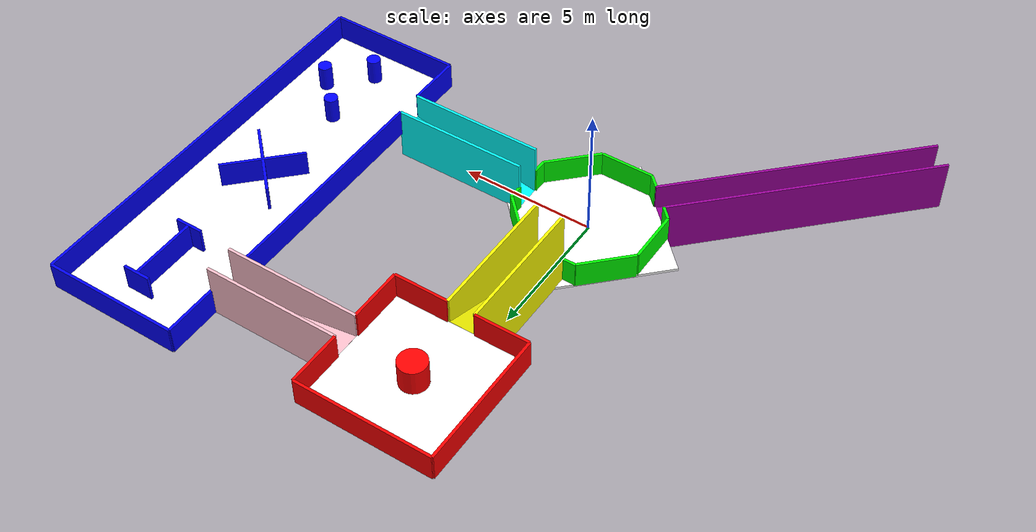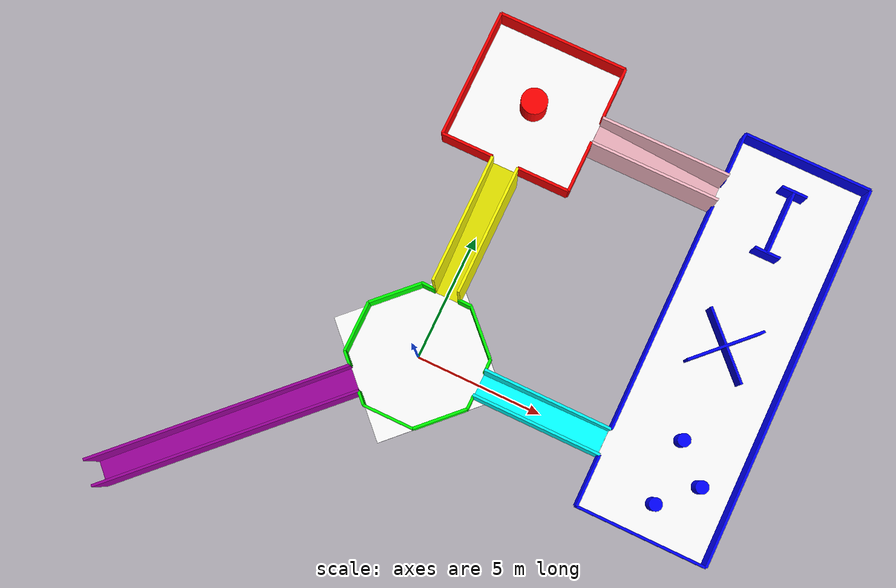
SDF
<sdf version="1.5">
 <world name="7hd">
  <include><uri>model://sun</uri></include>
  <model name="room_green">
   <static>true</static>
   <link name="floor">
    <collision name="coll"><geometry><box><size>5 5 0.1</size></box></geometry></collision>
    <visual name="vis">
     <geometry><box><size>5 5 0.1</size></box></geometry>
     <material><ambient>1 1 1 1</ambient><diffuse>1 1 1 1</diffuse></material>
    </visual>
    <pose>0 0 0 0 0 0.7854</pose>
   </link>
   <link name="wall_back">
    <collision name="coll"><geometry><box><size>0.1 2 1</size></box></geometry></collision>
    <visual name="vis">
     <geometry><box><size>0.1 2 1</size></box></geometry>
     <material><ambient>0 1 0 1</ambient><diffuse>0 1 0 1</diffuse></material>
    </visual>
    <pose>-2.5 0 0.5 0 0 0</pose>
   </link>
   <link name="wall_left_left">
    <collision name="coll"><geometry><box><size>0.55 0.1 1</size></box></geometry></collision>
    <visual name="vis">
     <geometry><box><size>0.55 0.1 1</size></box></geometry>
     <material><ambient>0 1 0 1</ambient><diffuse>0 1 0 1</diffuse></material>
    </visual>
    <pose>-0.75 2.5 0.5 0 0 0</pose>
   </link>
   <link name="wall_left_right">
    <collision name="coll"><geometry><box><size>0.55 0.1 1</size></box></geometry></collision>
    <visual name="vis">
     <geometry><box><size>0.55 0.1 1</size></box></geometry>
     <material><ambient>0 1 0 1</ambient><diffuse>0 1 0 1</diffuse></material>
    </visual>
    <pose>0.75 2.5 0.5 0 0 0</pose>
   </link>
   <link name="wall_right">
    <collision name="coll"><geometry><box><size>2 0.1 1</size></box></geometry></collision>
    <visual name="vis">
     <geometry><box><size>2 0.1 1</size></box></geometry>
     <material><ambient>0 1 0 1</ambient><diffuse>0 1 0 1</diffuse></material>
    </visual>
    <pose>0 -2.5 0.5 0 0 0</pose>
   </link>
   <link name="wall_front_leftSeg">
    <collision name="coll"><geometry><box><size>0.1 0.55 1</size></box></geometry></collision>
    <visual name="vis">
     <geometry><box><size>0.1 0.55 1</size></box></geometry>
     <material><ambient>0 1 0 1</ambient><diffuse>0 1 0 1</diffuse></material>
    </visual>
    <pose>2.5 -0.75 0.5 0 0 0</pose>
   </link>
   <link name="wall_front_rightSeg">
    <collision name="coll"><geometry><box><size>0.1 0.55 1</size></box></geometry></collision>
    <visual name="vis">
     <geometry><box><size>0.1 0.55 1</size></box></geometry>
     <material><ambient>0 1 0 1</ambient><diffuse>0 1 0 1</diffuse></material>
    </visual>
    <pose>2.5 0.75 0.5 0 0 0</pose>
   </link>
   <link name="wall_ne">
    <collision name="coll"><geometry><box><size>2.1 0.1 1</size></box></geometry></collision>
    <visual name="vis">
     <geometry><box><size>2.1 0.1 1</size></box></geometry>
     <material><ambient>0 1 0 1</ambient><diffuse>0 1 0 1</diffuse></material>
    </visual>
    <pose>1.75 -1.75 0.5 0 0 0.7854</pose>
   </link>
   <link name="wall_sw">
    <collision name="coll"><geometry><box><size>2.1 0.1 1</size></box></geometry></collision>
    <visual name="vis">
     <geometry><box><size>2.1 0.1 1</size></box></geometry>
     <material><ambient>0 1 0 1</ambient><diffuse>0 1 0 1</diffuse></material>
    </visual>
    <pose>-1.75 1.75 0.5 0 0 0.7854</pose>
   </link>
   <link name="wall_nw">
    <collision name="coll"><geometry><box><size>2.1 0.1 1</size></box></geometry></collision>
    <visual name="vis">
     <geometry><box><size>2.1 0.1 1</size></box></geometry>
     <material><ambient>0 1 0 1</ambient><diffuse>0 1 0 1</diffuse></material>
    </visual>
    <pose>1.75 1.75 0.5 0 0 2.356</pose>
   </link>
   <link name="wall_se_left">
    <collision name="coll"><geometry><box><size>0.55 0.1 1</size></box></geometry></collision>
    <visual name="vis">
     <geometry><box><size>0.55 0.1 1</size></box></geometry>
     <material><ambient>0 1 0 1</ambient><diffuse>0 1 0 1</diffuse></material>
    </visual>
    <pose>-1.2 -2.3 0.5 0 0 2.356</pose>
   </link>
   <link name="wall_se_right">
    <collision name="coll"><geometry><box><size>0.55 0.1 1</size></box></geometry></collision>
    <visual name="vis">
     <geometry><box><size>0.55 0.1 1</size></box></geometry>
     <material><ambient>0 1 0 1</ambient><diffuse>0 1 0 1</diffuse></material>
    </visual>
    <pose>-2.3 -1.2 0.5 0 0 2.356</pose>
   </link>
  </model>
  <model name="room_red">
   <static>true</static>
   <link name="floor">
    <collision name="coll"><geometry><box><size>5 5 0.1</size></box></geometry></collision>
    <visual name="vis">
     <geometry><box><size>5 5 0.1</size></box></geometry>
     <material><ambient>1 1 1 1</ambient><diffuse>1 1 1 1</diffuse></material>
    </visual>
   </link>
   <link name="wall_back">
    <collision name="coll"><geometry><box><size>0.1 5 1</size></box></geometry></collision>
    <visual name="vis">
     <geometry><box><size>0.1 5 1</size></box></geometry>
     <material><ambient>1 0 0 1</ambient><diffuse>1 0 0 1</diffuse></material>
    </visual>
    <pose>-2.5 0 0.5 0 0 0</pose>
   </link>
   <link name="wall_left">
    <collision name="coll"><geometry><box><size>5 0.1 1</size></box></geometry></collision>
    <visual name="vis">
     <geometry><box><size>5 0.1 1</size></box></geometry>
     <material><ambient>1 0 0 1</ambient><diffuse>1 0 0 1</diffuse></material>
    </visual>
    <pose>0 2.5 0.5 0 0 0</pose>
   </link>
   <link name="wall_right_left">
    <collision name="coll"><geometry><box><size>2 0.1 1</size></box></geometry></collision>
    <visual name="vis">
     <geometry><box><size>2 0.1 1</size></box></geometry>
     <material><ambient>1 0 0 1</ambient><diffuse>1 0 0 1</diffuse></material>
    </visual>
    <pose>-1.5 -2.5 0.5 0 0 0</pose>
   </link>
   <link name="wall_right_right">
    <collision name="coll"><geometry><box><size>2 0.1 1</size></box></geometry></collision>
    <visual name="vis">
     <geometry><box><size>2 0.1 1</size></box></geometry>
     <material><ambient>1 0 0 1</ambient><diffuse>1 0 0 1</diffuse></material>
    </visual>
    <pose>1.5 -2.5 0.5 0 0 0</pose>
   </link>
   <link name="wall_front_leftSeg">
    <collision name="coll"><geometry><box><size>0.1 2 1</size></box></geometry></collision>
    <visual name="vis">
     <geometry><box><size>0.1 2 1</size></box></geometry>
     <material><ambient>1 0 0 1</ambient><diffuse>1 0 0 1</diffuse></material>
    </visual>
    <pose>2.5 -1.5 0.5 0 0 0</pose>
   </link>
   <link name="wall_front_rightSeg">
    <collision name="coll"><geometry><box><size>0.1 2 1</size></box></geometry></collision>
    <visual name="vis">
     <geometry><box><size>0.1 2 1</size></box></geometry>
     <material><ambient>1 0 0 1</ambient><diffuse>1 0 0 1</diffuse></material>
    </visual>
    <pose>2.5 1.5 0.5 0 0 0</pose>
   </link>
   <link name="cylinder">
    <collision name="collision">
     <geometry><cylinder><radius>0.5</radius><length>1</length></cylinder></geometry>
    </collision>
    <visual name="visual">
     <geometry><cylinder><radius>0.5</radius><length>1</length></cylinder></geometry>
     <material><ambient>1 0 0 1</ambient><diffuse>1 0 0 1</diffuse></material>
    </visual>
    <pose>0 0 0.5 0 0 0</pose>
   </link>
   <pose>0 10 2 0 0 0</pose>
  </model>
  <model name="room_blue">
   <static>true</static>
   <link name="floor">
    <collision name="coll"><geometry><box><size>5 15 0.1</size></box></geometry></collision>
    <visual name="vis">
     <geometry><box><size>5 15 0.1</size></box></geometry>
     <material><ambient>1 1 1 1</ambient><diffuse>1 1 1 1</diffuse></material>
    </visual>
   </link>
   <link name="wall_back">
    <collision name="coll"><geometry><box><size>0.1 15 1</size></box></geometry></collision>
    <visual name="vis">
     <geometry><box><size>0.1 15 1</size></box></geometry>
     <material><ambient>0 0 1 1</ambient><diffuse>0 0 1 1</diffuse></material>
    </visual>
    <pose>2.5 0 0.5 0 0 0</pose>
   </link>
   <link name="wall_left">
    <collision name="coll"><geometry><box><size>5 0.1 1</size></box></geometry></collision>
    <visual name="vis">
     <geometry><box><size>5 0.1 1</size></box></geometry>
     <material><ambient>0 0 1 1</ambient><diffuse>0 0 1 1</diffuse></material>
    </visual>
    <pose>0 -7.5 0.5 0 0 0</pose>
   </link>
   <link name="wall_right">
    <collision name="coll"><geometry><box><size>5 0.1 1</size></box></geometry></collision>
    <visual name="vis">
     <geometry><box><size>5 0.1 1</size></box></geometry>
     <material><ambient>0 0 1 1</ambient><diffuse>0 0 1 1</diffuse></material>
    </visual>
    <pose>0 7.5 0.5 0 0 0</pose>
   </link>
   <link name="wall_front_leftSeg">
    <collision name="coll"><geometry><box><size>0.1 2 1</size></box></geometry></collision>
    <visual name="vis">
     <geometry><box><size>0.1 2 1</size></box></geometry>
     <material><ambient>0 0 1 1</ambient><diffuse>0 0 1 1</diffuse></material>
    </visual>
    <pose>-2.5 -6.5 0.5 0 0 0</pose>
   </link>
   <link name="wall_front_rightSeg">
    <collision name="coll"><geometry><box><size>0.1 2 1</size></box></geometry></collision>
    <visual name="vis">
     <geometry><box><size>0.1 2 1</size></box></geometry>
     <material><ambient>0 0 1 1</ambient><diffuse>0 0 1 1</diffuse></material>
    </visual>
    <pose>-2.5 6.5 0.5 0 0 0</pose>
   </link>
   <link name="wall_front_middleSeg">
    <collision name="coll"><geometry><box><size>0.1 9 1</size></box></geometry></collision>
    <visual name="vis">
     <geometry><box><size>0.1 9 1</size></box></geometry>
     <material><ambient>0 0 1 1</ambient><diffuse>0 0 1 1</diffuse></material>
    </visual>
    <pose>-2.5 0 0.5 0 0 0</pose>
   </link>
   <link name="cylinder1">
    <collision name="collision">
     <geometry><cylinder><radius>0.25</radius><length>1</length></cylinder></geometry>
    </collision>
    <visual name="visual">
     <geometry><cylinder><radius>0.25</radius><length>1</length></cylinder></geometry>
     <material><ambient>0 0 1 1</ambient><diffuse>0 0 1 1</diffuse></material>
    </visual>
    <pose>0 -3.75 0.5 0 0 0</pose>
   </link>
   <link name="cylinder2">
    <collision name="collision">
     <geometry><cylinder><radius>0.25</radius><length>1</length></cylinder></geometry>
    </collision>
    <visual name="visual">
     <geometry><cylinder><radius>0.25</radius><length>1</length></cylinder></geometry>
     <material><ambient>0 0 1 1</ambient><diffuse>0 0 1 1</diffuse></material>
    </visual>
    <pose>1.25 -5 0.5 0 0 0</pose>
   </link>
   <link name="cylinder4">
    <collision name="collision">
     <geometry><cylinder><radius>0.25</radius><length>1</length></cylinder></geometry>
    </collision>
    <visual name="visual">
     <geometry><cylinder><radius>0.25</radius><length>1</length></cylinder></geometry>
     <material><ambient>0 0 1 1</ambient><diffuse>0 0 1 1</diffuse></material>
    </visual>
    <pose>0 -6.25 0.5 0 0 0</pose>
   </link>
   <link name="cross1">
    <collision name="coll"><geometry><box><size>3 0.1 1</size></box></geometry></collision>
    <visual name="vis">
     <geometry><box><size>3 0.1 1</size></box></geometry>
     <material><ambient>0 0 1 1</ambient><diffuse>0 0 1 1</diffuse></material>
    </visual>
    <pose>0 0 0.5 0 0 0.7854</pose>
   </link>
   <link name="cross2">
    <collision name="coll"><geometry><box><size>3 0.1 1</size></box></geometry></collision>
    <visual name="vis">
     <geometry><box><size>3 0.1 1</size></box></geometry>
     <material><ambient>0 0 1 1</ambient><diffuse>0 0 1 1</diffuse></material>
    </visual>
    <pose>0 0 0.5 0 0 -0.7854</pose>
   </link>
   <link name="wall1">
    <collision name="coll"><geometry><box><size>1 0.1 1</size></box></geometry></collision>
    <visual name="vis">
     <geometry><box><size>1 0.1 1</size></box></geometry>
     <material><ambient>0 0 1 1</ambient><diffuse>0 0 1 1</diffuse></material>
    </visual>
    <pose>0 3.75 0.5 0 0 0</pose>
   </link>
   <link name="wall2">
    <collision name="coll"><geometry><box><size>1 0.1 1</size></box></geometry></collision>
    <visual name="vis">
     <geometry><box><size>1 0.1 1</size></box></geometry>
     <material><ambient>0 0 1 1</ambient><diffuse>0 0 1 1</diffuse></material>
    </visual>
    <pose>0 6.25 0.5 0 0 0</pose>
   </link>
   <link name="wall3">
    <collision name="coll"><geometry><box><size>0.1 2.5 1</size></box></geometry></collision>
    <visual name="vis">
     <geometry><box><size>0.1 2.5 1</size></box></geometry>
     <material><ambient>0 0 1 1</ambient><diffuse>0 0 1 1</diffuse></material>
    </visual>
    <pose>0 5 0.5 0 0 0</pose>
   </link>
   <pose>10 5 1 0 0 0</pose>
  </model>
  <model name="ramp_green_to_blue">
   <static>true</static>
   <link name="ramp">
    <collision name="coll"><geometry><box><size>5.11 1 0.1</size></box></geometry></collision>
    <visual name="vis">
     <geometry><box><size>5.11 1 0.1</size></box></geometry>
     <material><ambient>0 1 1 1</ambient><diffuse>0 1 1 1</diffuse></material>
    </visual>
    <pose>0 0 0 0 -0.1974 0</pose>
   </link>
   <link name="wall_left">
    <collision name="coll"><geometry><box><size>5 0.1 2</size></box></geometry></collision>
    <visual name="vis">
     <geometry><box><size>5 0.1 2</size></box></geometry>
     <material><ambient>0 1 1 1</ambient><diffuse>0 1 1 1</diffuse></material>
    </visual>
    <pose>0 0.5 0.5 0 0 0</pose>
   </link>
   <link name="wall_right">
    <collision name="coll"><geometry><box><size>5 0.1 2</size></box></geometry></collision>
    <visual name="vis">
     <geometry><box><size>5 0.1 2</size></box></geometry>
     <material><ambient>0 1 1 1</ambient><diffuse>0 1 1 1</diffuse></material>
    </visual>
    <pose>0 -0.5 0.5 0 0 0</pose>
   </link>
   <pose>5 0 0.5 0 0 0</pose>
  </model>
  <model name="ramp_blue_to_red">
   <static>true</static>
   <link name="ramp">
    <collision name="coll"><geometry><box><size>5.11 1 0.1</size></box></geometry></collision>
    <visual name="vis">
     <geometry><box><size>5.11 1 0.1</size></box></geometry>
     <material><ambient>1 0.75 0.8 1</ambient><diffuse>1 0.75 0.8 1</diffuse></material>
    </visual>
    <pose>0 0 0 0 0.1974 0</pose>
   </link>
   <link name="wall_left">
    <collision name="coll"><geometry><box><size>5 0.1 2</size></box></geometry></collision>
    <visual name="vis">
     <geometry><box><size>5 0.1 2</size></box></geometry>
     <material><ambient>1 0.75 0.8 1</ambient><diffuse>1 0.75 0.8 1</diffuse></material>
    </visual>
    <pose>0 0.5 0.5 0 0 0</pose>
   </link>
   <link name="wall_right">
    <collision name="coll"><geometry><box><size>5 0.1 2</size></box></geometry></collision>
    <visual name="vis">
     <geometry><box><size>5 0.1 2</size></box></geometry>
     <material><ambient>1 0.75 0.8 1</ambient><diffuse>1 0.75 0.8 1</diffuse></material>
    </visual>
    <pose>0 -0.5 0.5 0 0 0</pose>
   </link>
   <pose>5 10 1.5 0 0 0</pose>
  </model>
  <model name="ramp_red_to_green">
   <static>true</static>
   <link name="ramp">
    <collision name="coll"><geometry><box><size>1 5.43 0.1</size></box></geometry></collision>
    <visual name="vis">
     <geometry><box><size>1 5.43 0.1</size></box></geometry>
     <material><ambient>1 1 0 1</ambient><diffuse>1 1 0 1</diffuse></material>
    </visual>
    <pose>0 0 0 0.3805 0 0</pose>
   </link>
   <link name="wall_left">
    <collision name="coll"><geometry><box><size>0.1 5 3</size></box></geometry></collision>
    <visual name="vis">
     <geometry><box><size>0.1 5 3</size></box></geometry>
     <material><ambient>1 1 0 1</ambient><diffuse>1 1 0 1</diffuse></material>
    </visual>
    <pose>-0.5 0 0.5 0 0 0</pose>
   </link>
   <link name="wall_right">
    <collision name="coll"><geometry><box><size>0.1 5 3</size></box></geometry></collision>
    <visual name="vis">
     <geometry><box><size>0.1 5 3</size></box></geometry>
     <material><ambient>1 1 0 1</ambient><diffuse>1 1 0 1</diffuse></material>
    </visual>
    <pose>0.5 0 0.5 0 0 0</pose>
   </link>
   <pose>0 5 1 0 0 0</pose>
  </model>
  <model name="ramp_green_to_gray">
   <static>true</static>
   <link name="ramp">
    <collision name="coll"><geometry><box><size>1 10.25 0.1</size></box></geometry></collision>
    <visual name="vis">
     <geometry><box><size>1 10.25 0.1</size></box></geometry>
     <material><ambient>0.6 0 0.6 1</ambient><ambient>0.8 0.6 0.8 1</ambient></material>
    </visual>
    <pose>0 0 0 0.0975 0 0</pose>
   </link>
   <link name="wall_left">
    <collision name="coll"><geometry><box><size>0.1 10.25 2</size></box></geometry></collision>
    <visual name="vis">
     <geometry><box><size>0.1 10.25 2</size></box></geometry>
     <material><ambient>0.6 0 0.6 1</ambient><ambient>0.8 0.6 0.8 1</ambient></material>
    </visual>
    <pose>-0.5 0 0.5 0 0 0</pose>
   </link>
   <link name="wall_right">
    <collision name="coll"><geometry><box><size>0.1 10.25 2</size></box></geometry></collision>
    <visual name="vis">
     <geometry><box><size>0.1 10.25 2</size></box></geometry>
     <material><ambient>0.6 0 0.6 1</ambient><ambient>0.8 0.6 0.8 1</ambient></material>
    </visual>
    <pose>0.5 0 0.5 0 0 0</pose>
   </link>
   <pose>-5.36 -5.36 -0.5 0 0 -0.7854</pose>
  </model>
 </world>
</sdf>
